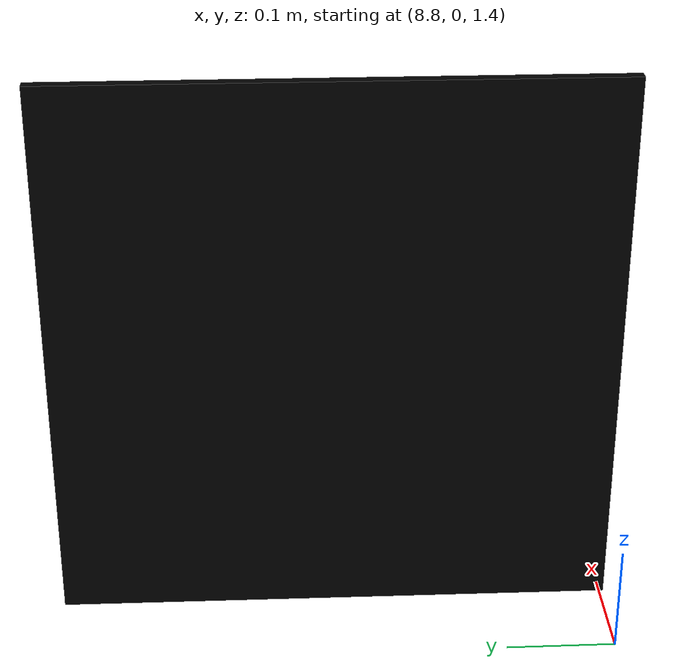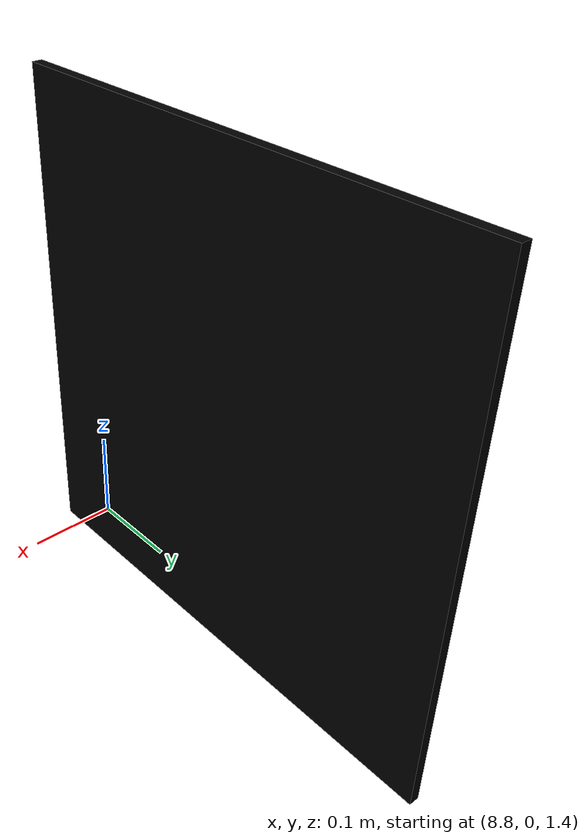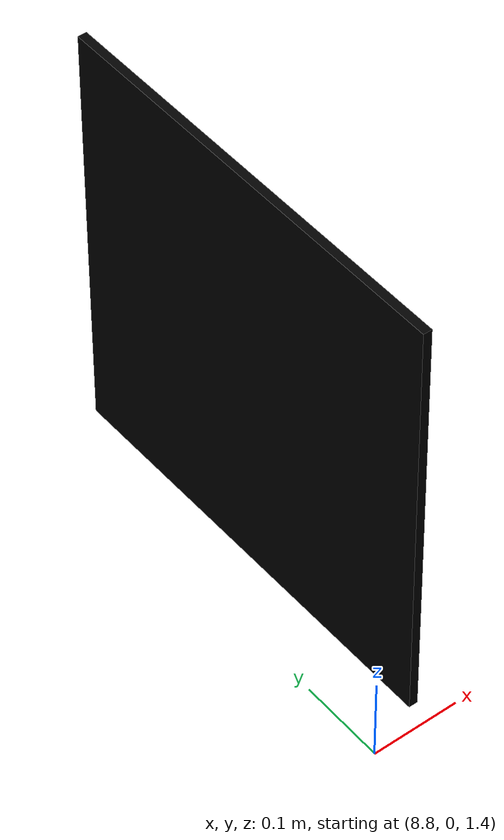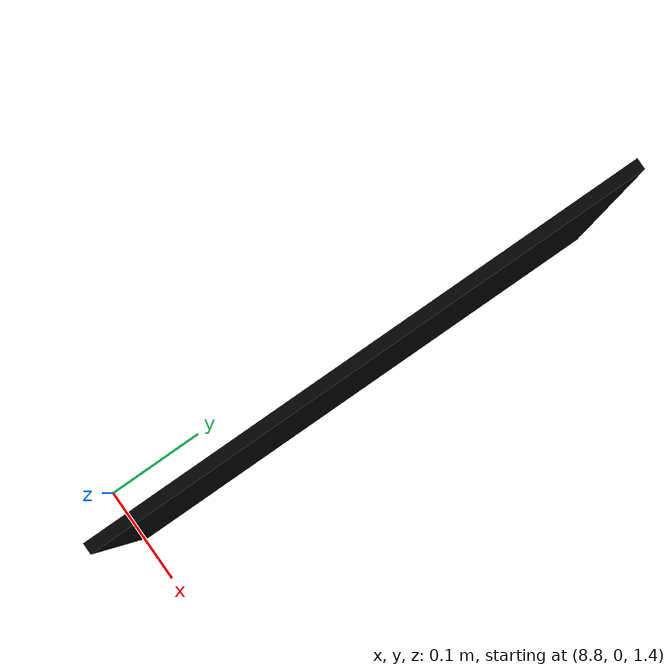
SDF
<sdf version="1.7">
 <world name="default">
  <light name="sun" type="directional">
   <pose>0 0 10 0 -0 0</pose>
   <diffuse>0.8 0.8 0.8 1</diffuse>
   <specular>0.2 0.2 0.2 1</specular>
   <attenuation>
    <range>1000</range>
    <constant>0.9</constant>
    <linear>0.01</linear>
    <quadratic>0.001</quadratic>
   </attenuation>
   <direction>-0.5 0.1 -0.9</direction>
   <spot><inner_angle>0</inner_angle><outer_angle>0</outer_angle><falloff>0</falloff></spot>
  </light>
  <model name="ground_plane">
   <static>1</static>
   <link name="link">
    <collision name="collision">
     <geometry><plane><normal>0 0 1</normal><size>100 100</size></plane></geometry>
     <surface>
      <contact><collide_bitmask>65535</collide_bitmask></contact>
      <friction><ode><mu>100</mu><mu2>50</mu2></ode></friction>
     </surface>
    </collision>
    <visual name="visual">
     <cast_shadows>0</cast_shadows>
     <geometry><plane><normal>0 0 1</normal><size>100 100</size></plane></geometry>
     <material>
      <script><uri>file://media/materials/scripts/gazebo.material</uri><name>Gazebo/Grey</name></script>
     </material>
    </visual>
   </link>
  </model>
  <physics name="default_physics" default="0" type="ode">
   <ode>
    <solver>
     <type>quick</type>
     <iters>10</iters>
     <sor>1.3</sor>
     <use_dynamic_moi_rescaling>0</use_dynamic_moi_rescaling>
    </solver>
    <constraints>
     <cfm>0</cfm>
     <erp>0.2</erp>
     <contact_max_correcting_vel>100</contact_max_correcting_vel>
     <contact_surface_layer>0.001</contact_surface_layer>
    </constraints>
   </ode>
   <max_step_size>0.004</max_step_size>
   <real_time_factor>1</real_time_factor>
   <real_time_update_rate>250</real_time_update_rate>
  </physics>
  <gravity>0 0 -9.8066</gravity>
  <magnetic_field>6e-06 2.3e-05 -4.2e-05</magnetic_field>
  <atmosphere type="adiabatic"/>
  <scene><ambient>0.4 0.4 0.4 1</ambient><background>0.7 0.7 0.7 1</background><shadows>1</shadows></scene>
  <spherical_coordinates>
   <surface_model>EARTH_WGS84</surface_model>
   <latitude_deg>0</latitude_deg>
   <longitude_deg>0</longitude_deg>
   <elevation>0</elevation>
   <heading_deg>0</heading_deg>
  </spherical_coordinates>
  <model name="DICT_ARUCO_ORIGINAL_id1.2">
   <link name="link">
    <pose>4 0 0 0 -0 0</pose>
    <inertial>
     <mass>1</mass>
     <inertia><ixx>1</ixx><ixy>0</ixy><ixz>0</ixz><iyy>1</iyy><iyz>0</iyz><izz>1</izz></inertia>
    </inertial>
    <visual name="visual">
     <geometry>
      <mesh><uri>model://dict_aruco_original_id1/meshes/DICT_ARUCO_ORIGINAL_id1.dae</uri><scale>1 1 1</scale></mesh>
     </geometry>
     <material>
      <shader type="pixel"><normal_map>__default__</normal_map></shader>
      <script><name>ModelPreview_1::link::visual_MATERIAL_</name><uri>__default__</uri></script>
      <ambient>0 0 0 1</ambient>
      <diffuse>0 0 0 1</diffuse>
      <specular>0 0 0 1</specular>
      <emissive>0 0 0 1</emissive>
     </material>
    </visual>
   </link>
   <static>1</static>
   <pose>4.85089 0.255475 1.42897 0 -0 0</pose>
  </model>
 </world>
</sdf>
